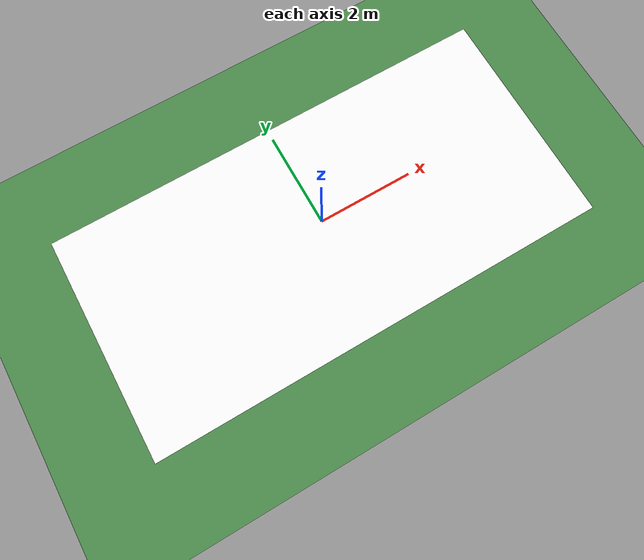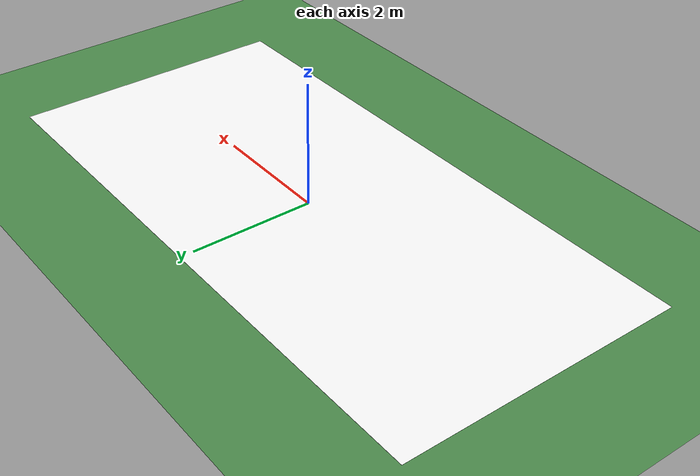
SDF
<?xml version="1.0" ?>
<sdf version='1.8'>
  <world name='lane_following_complex_b'>
    <physics name='1ms' type='ignored'>
      <max_step_size>0.001</max_step_size>
      <real_time_factor>1</real_time_factor>
    </physics>
    <plugin
      filename="gz-sim-physics-system"
      name="gz::sim::systems::Physics">
    </plugin>
    <plugin
      filename="gz-sim-user-commands-system"
      name="gz::sim::systems::UserCommands">
    </plugin>
    <plugin
      filename="gz-sim-scene-broadcaster-system"
      name="gz::sim::systems::SceneBroadcaster">
    </plugin>
    <plugin
      filename="gz-sim-sensors-system"
      name="gz::sim::systems::Sensors">
      <render_engine>ogre2</render_engine>
    </plugin>
    <plugin
      filename="gz-sim-imu-system"
      name="gz::sim::systems::Imu">
    </plugin>
    <model name='ground_plane'>
      <static>true</static>
      <link name='link'>
        <collision name='collision'>
          <geometry>
            <plane>
              <normal>0 0 1</normal>
              <size>50 50</size>
            </plane>
          </geometry>
          <surface>
            <friction><ode/></friction>
            <bounce/>
            <contact/>
          </surface>
        </collision>
        <visual name='visual'>
          <geometry>
            <plane>
              <normal>0 0 1</normal>
              <size>50 50</size>
            </plane>
          </geometry>
          <material>
            <ambient>0.3 0.55 0.3 1</ambient>
            <diffuse>0.3 0.55 0.3 1</diffuse>
            <specular>0.05 0.05 0.05 1</specular>
          </material>
        </visual>
      </link>
    </model>
    <model name='track_complex_b'>
      <static>true</static>
      <pose>0.0000 -0.0954 0.0010  0 0 1.570796</pose>
      <link name='link'>
        <visual name='visual'>
          <geometry>
            <box>
              <size>4.6328 9.5517 0.0020</size>
            </box>
          </geometry>
          <material>
            <diffuse>1 1 1 1</diffuse>
            <specular>0.05 0.05 0.05 1</specular>
            <pbr>
              <metal>
                <albedo_map>../materials/road_assets/tracks/complex_b_flipH.png</albedo_map>
                <roughness>0.9</roughness>
                <metalness>0.0</metalness>
              </metal>
            </pbr>
          </material>
        </visual>
      </link>
    </model>
    <light name='sun' type='directional'>
      <pose>0 0 10 0 0 0</pose>
      <cast_shadows>false</cast_shadows>
      <intensity>1</intensity>
      <direction>-0.4 0.1 -0.9</direction>
      <diffuse>0.9 0.9 0.9 1</diffuse>
      <specular>0.2 0.2 0.2 1</specular>
      <attenuation>
        <range>1000</range>
        <linear>0.01</linear>
        <constant>0.9</constant>
        <quadratic>0.001</quadratic>
      </attenuation>
    </light>
  </world>
</sdf>
